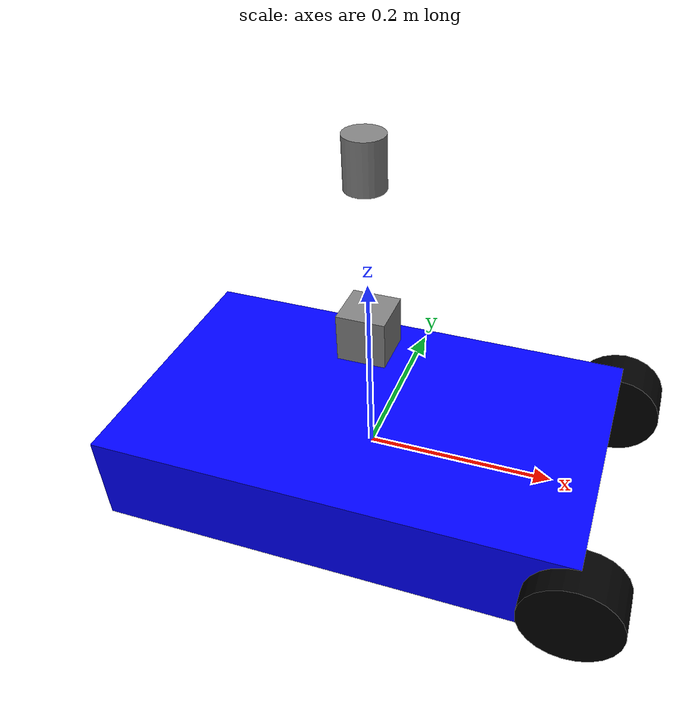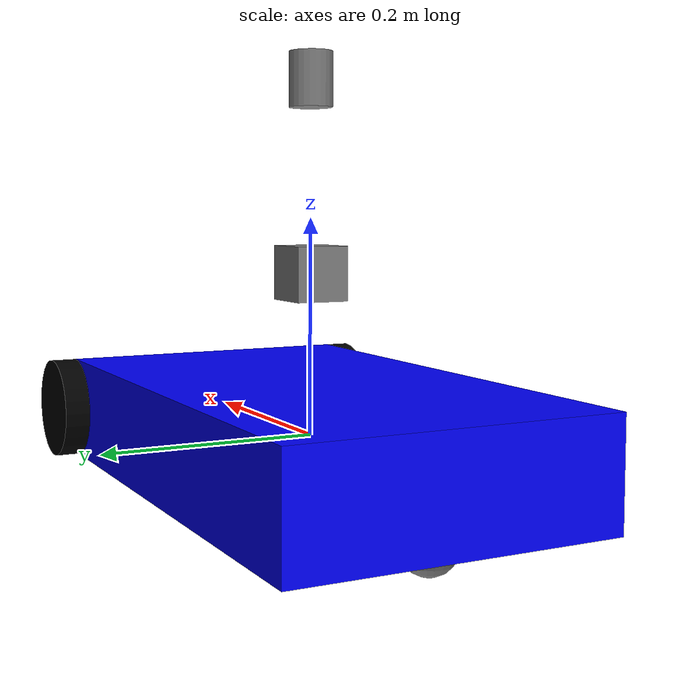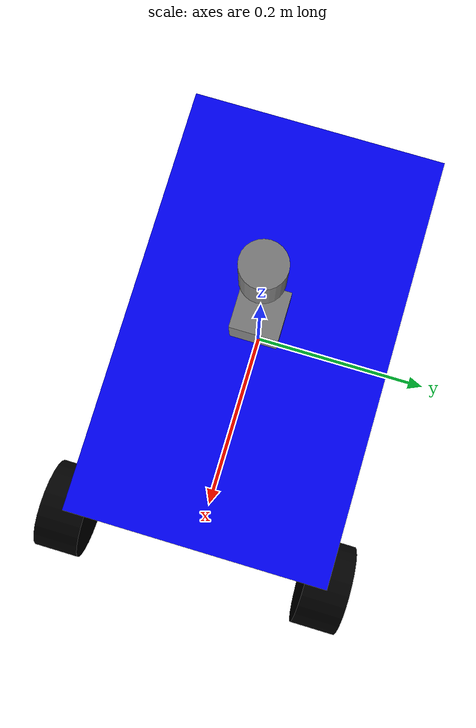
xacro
<?xml version="1.0"?>
<robot xmlns:xacro="http://ros.org/wiki/xacro" name="my_diffbot">
  <xacro:property name="wheel_radius" value="0.05"/>
  <xacro:property name="wheel_separation" value="0.3"/>
  <xacro:property name="chassis_length" value="0.5"/>
  <xacro:property name="chassis_width" value="0.3"/>
  <xacro:property name="chassis_height" value="0.1"/>

  <!-- Materials -->
  <material name="blue"><color rgba="0 0 1 1"/></material>
  <material name="black"><color rgba="0 0 0 1"/></material>
  <material name="gray"><color rgba="0.5 0.5 0.5 1"/></material>

  <!-- Base Link -->
  <link name="base_link">
    <visual>
      <origin xyz="0 0 0" rpy="0 0 0"/>
      <geometry>
        <box size="${chassis_length} ${chassis_width} ${chassis_height}"/>
      </geometry>
      <material name="blue"/>
    </visual>
    <collision>
      <origin xyz="0 0 0" rpy="0 0 0"/>
      <geometry>
        <box size="${chassis_length} ${chassis_width} ${chassis_height}"/>
      </geometry>
    </collision>
    <inertial>
      <mass value="5.0"/>
      <inertia ixx="0.038" ixy="0" ixz="0" iyy="0.083" iyz="0" izz="0.094"/>
    </inertial>
  </link>

  <!-- Left Wheel -->
  <link name="left_wheel_link">
    <visual>
      <origin xyz="0 0 0" rpy="0 1.5707 1.5707"/>
      <geometry>
        <cylinder radius="${wheel_radius}" length="0.05"/>
      </geometry>
      <material name="black"/>
    </visual>
    <collision>
      <origin xyz="0 0 0" rpy="0 1.5707 1.5707"/>
      <geometry>
        <cylinder radius="${wheel_radius}" length="0.05"/>
      </geometry>
      <surface>
        <friction>
          <ode>
            <mu>1.0</mu>
            <mu2>1.0</mu2>
          </ode>
        </friction>
      </surface>
    </collision>
    <inertial>
      <mass value="0.5"/>
      <inertia ixx="0.004" ixy="0" ixz="0" iyy="0.004" iyz="0" izz="0.0005"/>
    </inertial>
  </link>
  <joint name="left_wheel_joint" type="continuous">
    <parent link="base_link"/>
    <child link="left_wheel_link"/>
    <origin xyz="${chassis_length/2} ${-wheel_separation/2} 0" rpy="0 0 0"/>
    <axis xyz="0 1 0"/>
  </joint>

  <!-- Right Wheel -->
  <link name="right_wheel_link">
    <visual>
      <origin xyz="0 0 0" rpy="0 1.5707 1.5707"/>
      <geometry>
        <cylinder radius="${wheel_radius}" length="0.05"/>
      </geometry>
      <material name="black"/>
    </visual>
    <collision>
      <origin xyz="0 0 0" rpy="0 1.5707 1.5707"/>
      <geometry>
        <cylinder radius="${wheel_radius}" length="0.05"/>
      </geometry>
      <surface>
        <friction>
          <ode>
            <mu>1.0</mu>
            <mu2>1.0</mu2>
          </ode>
        </friction>
      </surface>
    </collision>
    <inertial>
      <mass value="0.5"/>
      <inertia ixx="0.004" ixy="0" ixz="0" iyy="0.004" iyz="0" izz="0.0005"/>
    </inertial>
  </link>
  <joint name="right_wheel_joint" type="continuous">
    <parent link="base_link"/>
    <child link="right_wheel_link"/>
    <origin xyz="${chassis_length/2} ${wheel_separation/2} 0" rpy="0 0 0"/>
    <axis xyz="0 1 0"/>
  </joint>

   <!-- Caster Wheel -->
<link name="caster_wheel_link">
  <visual>
    <origin xyz="0 0 0" rpy="0 0 0"/>
    <geometry>
      <sphere radius="0.025"/>
    </geometry>
    <material name="gray"/>
  </visual>
  <collision>
    <origin xyz="0 0 0" rpy="0 0 0"/>
    <geometry>
      <sphere radius="0.025"/>
    </geometry>
  </collision>
  <inertial>
    <mass value="0.2"/>
    <!-- Solid sphere inertia - I = 2/5 * m * r^2 -->
    <inertia ixx="0.00005" ixy="0" ixz="0"
	     iyy="0.00005" iyz="0" izz="0.00005"/>
  </inertial>
</link>

<joint name="caster_joint" type="continuous">
  <parent link="base_link"/>
  <child link="caster_wheel_link"/>
  <origin xyz="${-chassis_length/2 + 0.05} 0 -${wheel_radius}" rpy="0 0 0"/>
</joint>

  <!-- IMU Link -->
  <link name="imu_link">
    <visual>
      <origin xyz="0 0 0" rpy="0 0 0"/>
      <geometry>
        <box size="0.05 0.05 0.05"/>
      </geometry>
      <material name="gray"/>
    </visual>
    <collision>
      <origin xyz="0 0 0" rpy="0 0 0"/>
      <geometry>
        <box size="0.05 0.05 0.05"/>
      </geometry>
    </collision>
    <inertial>
      <mass value="0.01"/>
      <inertia ixx="8.33e-6" ixy="0" ixz="0" iyy="8.33e-6" iyz="0" izz="8.33e-6"/>
    </inertial>
  </link>
  <joint name="imu_joint" type="fixed">
    <parent link="base_link"/>
    <child link="imu_link"/>
    <origin xyz="0 0 ${chassis_height + 0.05}" rpy="0 0 0"/>
  </joint>

  <!-- LiDAR Link -->
  <link name="lidar_link">
    <visual>
      <origin xyz="0 0 0.025" rpy="0 0 0"/>
      <geometry>
        <cylinder radius="0.02" length="0.05"/>
      </geometry>
      <material name="gray"/>
    </visual>
    <collision>
      <origin xyz="0 0 0.025" rpy="0 0 0"/>
      <geometry>
        <cylinder radius="0.02" length="0.05"/>
      </geometry>
    </collision>
    <inertial>
      <mass value="0.1"/>
      <inertia ixx="0.0001" ixy="0" ixz="0" iyy="0.0001" iyz="0" izz="0.00005"/>
    </inertial>
  </link>
  <joint name="lidar_joint" type="fixed">
    <parent link="base_link"/>
    <child link="lidar_link"/>
    <origin xyz="0 0 ${chassis_height + 0.2}" rpy="0 0 0"/>
  </joint>

  <!-- Gazebo Plugins -->

  <gazebo reference="imu_link">
    <sensor name="imu_sensor" type="imu">
      <always_on>true</always_on>
      <update_rate>100</update_rate>
      <visualize>true</visualize>
      <topic>/imu/data</topic>
      <plugin filename="libgazebo_ros_imu_sensor.so" name="imu_plugin">
        <ros><namespace>/</namespace><remapping>~/out:=imu/data</remapping></ros>
        <gaussianNoise>0.0002</gaussianNoise>
        <orientation_covariance>0.0001 0 0 0 0.0001 0 0 0 0.0001</orientation_covariance>
        <angular_velocity_covariance>0.0001 0 0 0 0 0.0001 0 0 0 0.0001</angular_velocity_covariance>
        <linear_acceleration_covariance>0.0001 0 0 0 0 0.0001 0 0 0 0.0001</linear_acceleration_covariance>
      </plugin>
    </sensor>
  </gazebo>

  <gazebo reference="lidar_link">
    <sensor name="lidar_sensor" type="ray">
      <pose>0 0 0 0 0 0</pose>
      <always_on>true</always_on>
      <update_rate>10</update_rate>
      <visualize>true</visualize>
      <ray>
        <scan>
          <horizontal>
            <samples>360</samples>
            <resolution>1</resolution>
            <min_angle>-3.14159</min_angle>
            <max_angle>3.14159</max_angle>
          </horizontal>
        </scan>
        <range>
          <min>0.1</min>
          <max>10.0</max>
          <resolution>0.01</resolution>
        </range>
      </ray>
      <plugin filename="libgazebo_ros_ray_sensor.so" name="lidar_plugin">
        <ros><namespace>/</namespace><remapping>~/out:=scan</remapping></ros>
        <output_type>sensor_msgs/LaserScan</output_type>
        <gaussianNoise>0.0001</gaussianNoise>
        <update_rate>10</update_rate>
      </plugin>
    </sensor>
  </gazebo>

  <ros2_control name="GazeboSystem" type="system">
        <hardware>
            <plugin>gazebo_ros2_control/GazeboSystem</plugin>
        </hardware>
        <joint name="left_wheel_joint">
            <command_interface name="velocity">
                <param name="min">-10</param>
                <param name="max">10</param>
            </command_interface>
            <state_interface name="velocity"/>
            <state_interface name="position"/>
        </joint>
        <joint name="right_wheel_joint">
            <command_interface name="velocity">
                <param name="min">-10</param>
                <param name="max">10</param>
            </command_interface>
            <state_interface name="velocity"/>
            <state_interface name="position"/>
        </joint>
    </ros2_control>

    <gazebo>
        <plugin name="gazebo_ros2_control" filename="libgazebo_ros2_control.so">
            <parameters>$(find my_simulation)/config/diffbot_controllers.yaml</parameters>
        </plugin>
    </gazebo>

</robot>
